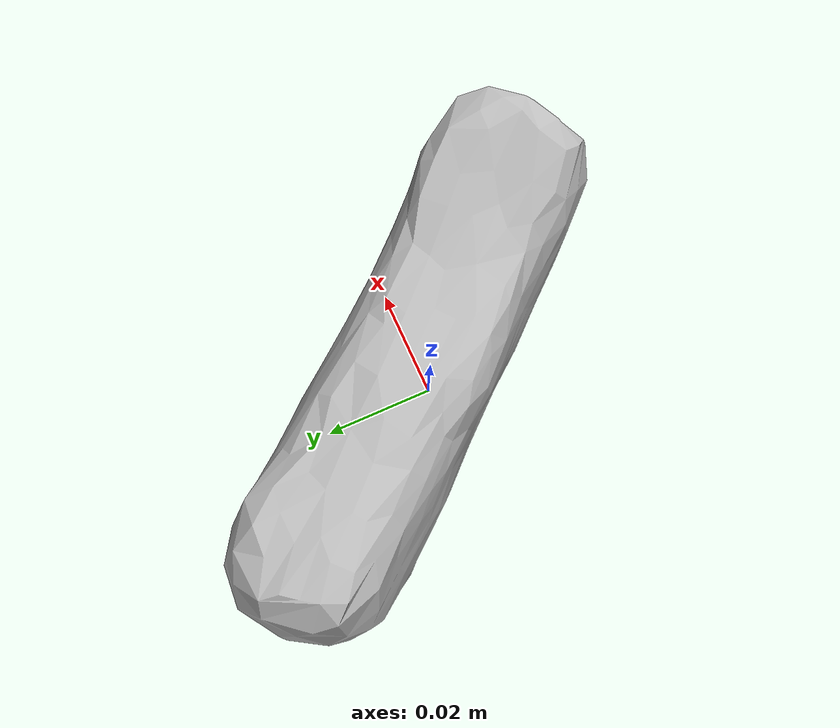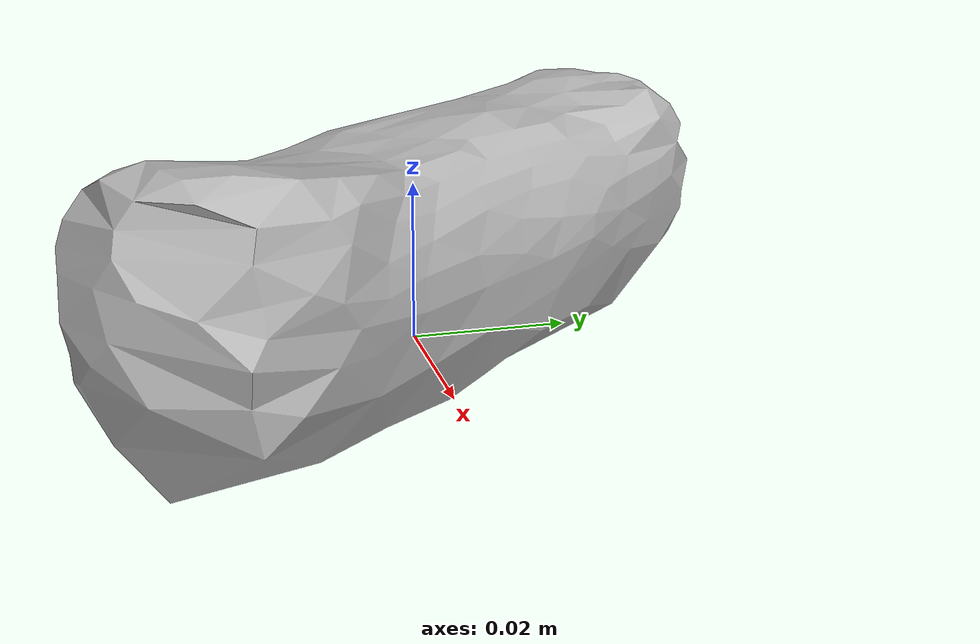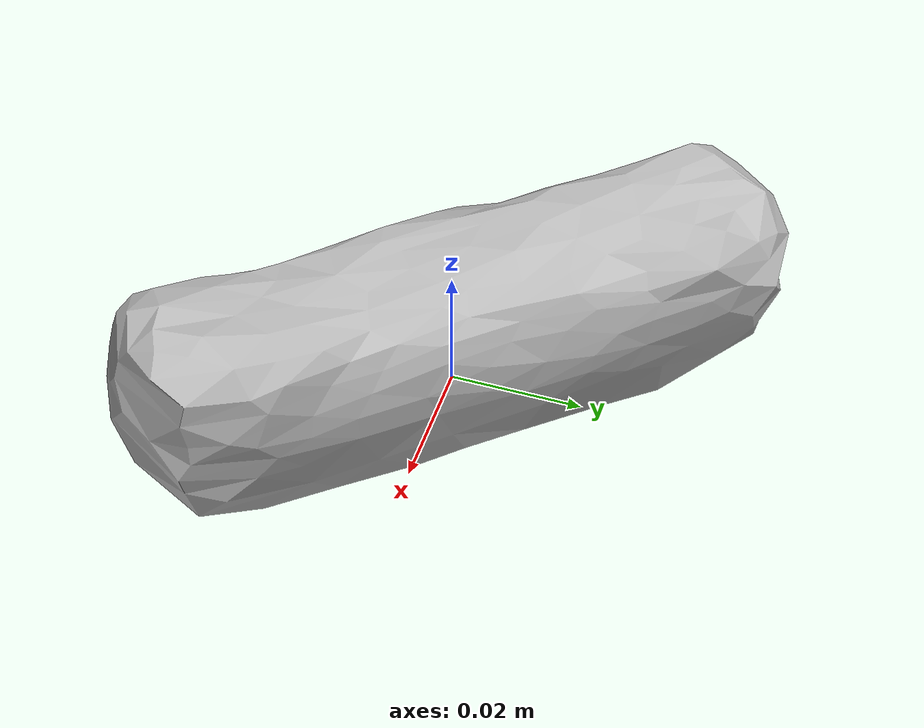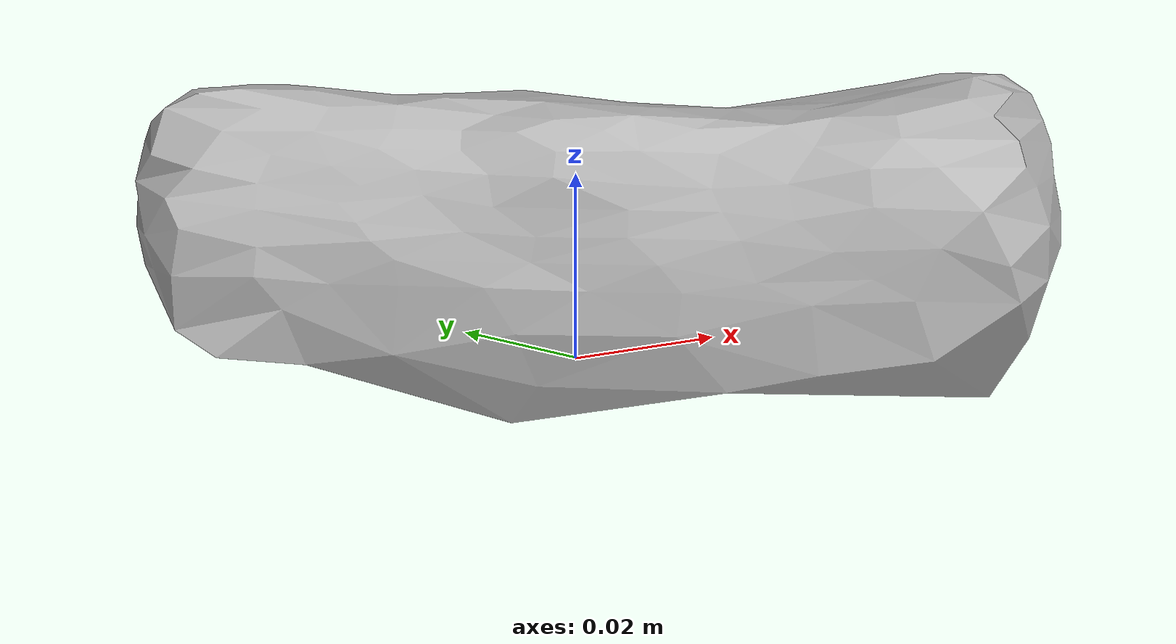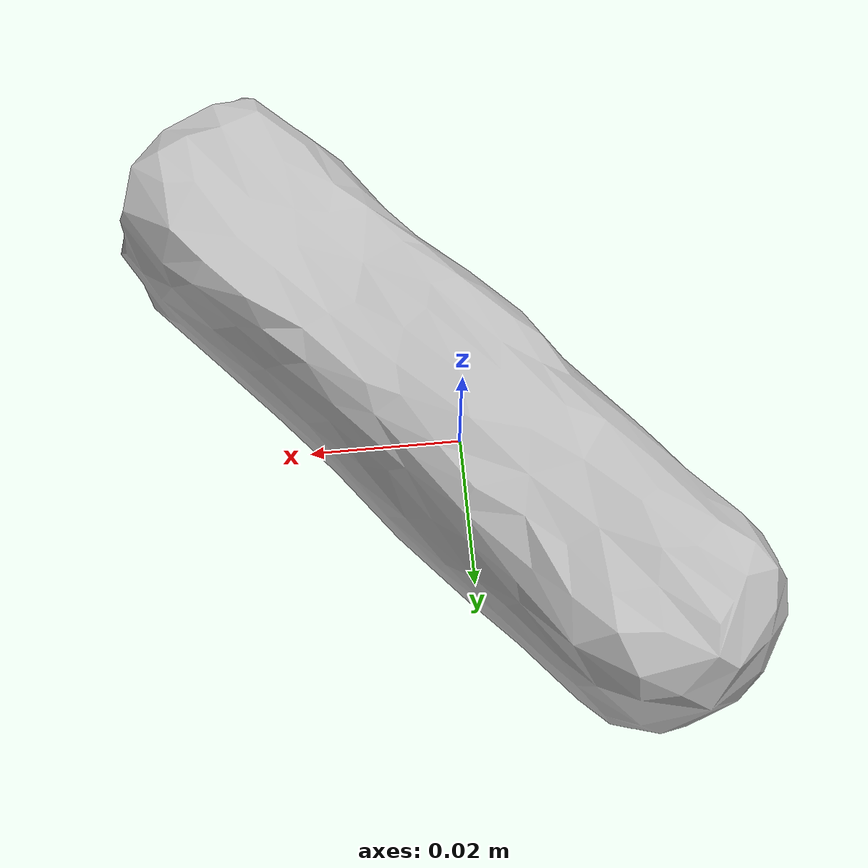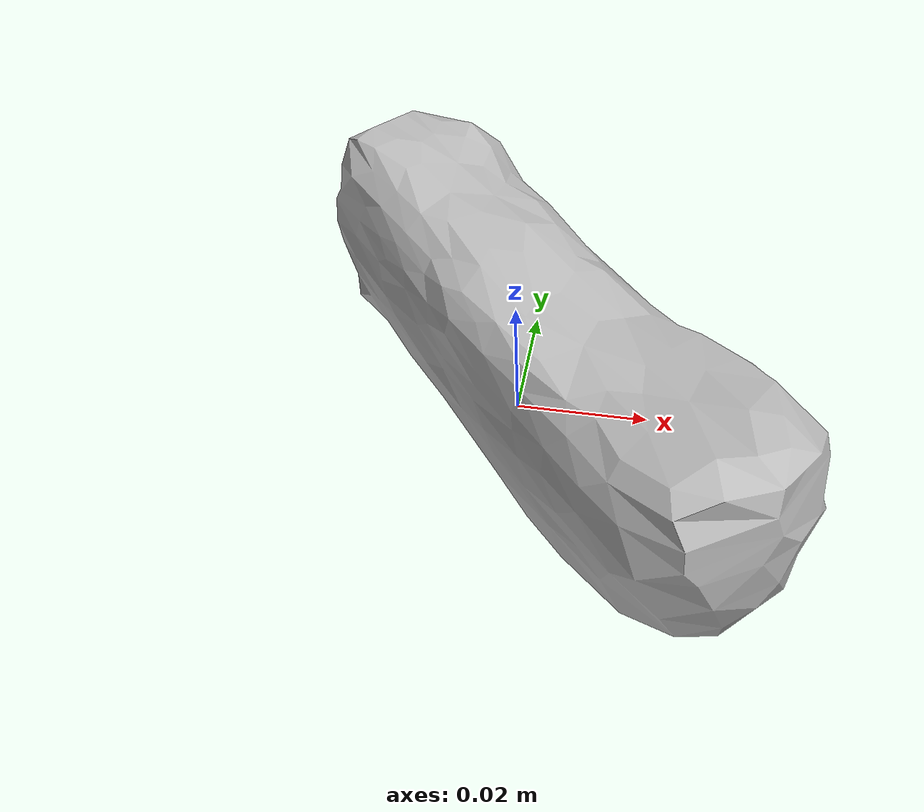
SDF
<?xml version="1.0" ?>
<sdf version="1.4">
  <model name="champion_copper_plus_spark_plug">
    <link name="champion_copper_plus_spark_plug_link">
      <inertial>
        <pose>0 0 0 0 0 0</pose>
        <mass>0.08</mass>
      </inertial>

      <visual name="champion_copper_plus_spark_plug_visual">
        <pose>0 0 0 0 0 0</pose>
        <material>
          <script>
            <uri>model://champion_copper_plus_spark_plug/materials/scripts</uri>
            <uri>model://champion_copper_plus_spark_plug/materials/textures</uri>
            <name>champion_copper_plus_spark_plug</name>
          </script>
        </material>
        <geometry>
          <mesh>
            <uri>model://champion_copper_plus_spark_plug/meshes/champion_copper_plus_spark_plug.dae</uri>
          </mesh>
        </geometry>
      </visual>

      <collision name="champion_copper_plus_spark_plug_collision">
        <pose>0 0 0 0 0 0</pose>
        <geometry>
          <mesh>
            <uri>model://champion_copper_plus_spark_plug/meshes/champion_copper_plus_spark_plug.dae</uri>
          </mesh>
        </geometry>
        <surface>
          <friction>
            <ode>
              <mu>0.8</mu>
              <mu2>0.8</mu2>
            </ode>
          </friction>
        </surface>
      </collision>

    </link>
  </model>
</sdf>
